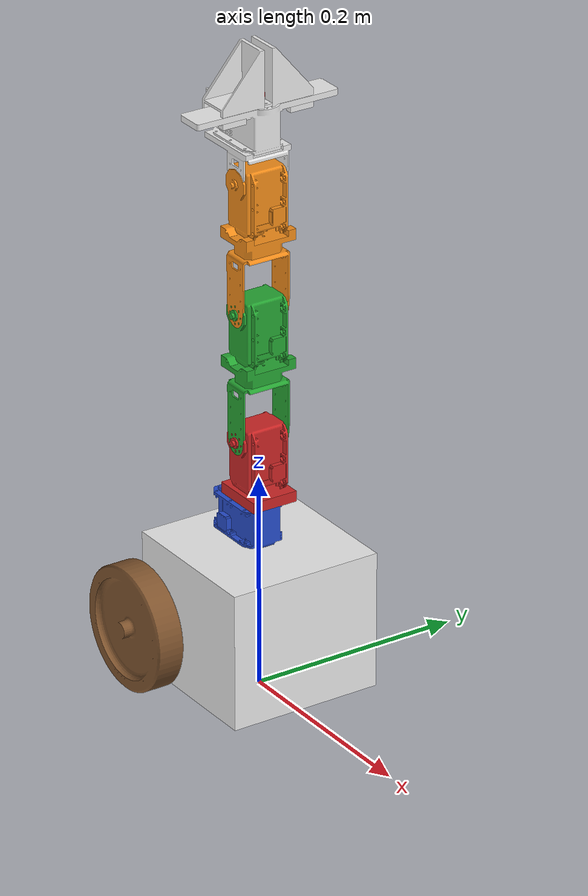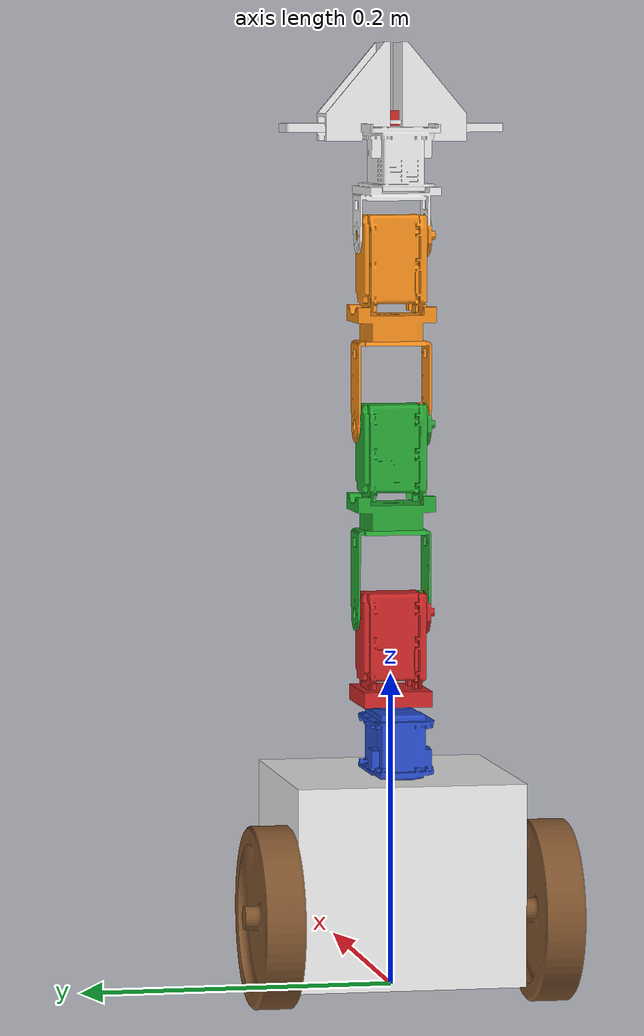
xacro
<?xml version="1.0"?>

<robot xmlns:xacro="http://www.ros.org/wiki/xacro" name="robot">

 <!-- include materials /-->
 <xacro:include filename="$(find robot_description)/model/materials.xacro" />

  <!-- World -->

  <!-- World fixed joint-->

  <link name="base_link">

    <inertial>
        <mass value="1.488"/>
        <origin xyz="0 0 0.068"  />
        <inertia ixx="0.0047" ixy="0.0" ixz="0.0047" iyy="0." iyz="0.0" izz="0.053"/>
    </inertial>

    <collision>
      <origin xyz="0 0 0.008" rpy="0 0 0"/>
      <geometry>
        <mesh filename="package://robot_description/new_meshes/base.stl" scale="0.001 0.001 0.001"/>
        <!--box size="0.146 0.146 0.129"/ -->
      </geometry>
    </collision>

    <visual>
      <origin xyz="0 0 0.008" rpy="0 0 0"/>
      <geometry>
        <mesh filename="package://robot_description/new_meshes/base.stl" scale="0.001 0.001 0.001"/>
        <!--box size="0.146 0.146 0.129"/ -->
      </geometry>
      <material name="white"/>
    </visual>

  </link>

    <!-- Joint wheel_left_joint -->
  <joint name="wheel_left_joint" type="continuous">
    <parent link="base_link"/>
    <child link="wheel_left_link"/>
    <origin xyz="-0.06 -0.073 0.055" rpy="0 0 0"/>
    <axis xyz="0 1 0"/>
  </joint>

  <!-- wheel_left_link -->
  <link name="wheel_left_link">
    <visual>
      <origin xyz="0 0 0" rpy="0 0 0"/>
      <geometry>
        <mesh filename="package://robot_description/new_meshes/wheel_left.stl" scale="0.01 0.01 0.01"/>
      </geometry>
      <material name="brown"/>
    </visual>

    <collision>
      <origin xyz="0 0 0" rpy="0 0 0"/>
      <geometry>
        <cylinder length="0.030" radius="0.050"/>
      </geometry>
    </collision>

    <inertial>
      <origin xyz="0 0 0" />
      <mass value="2.8498940e-02" />
      <inertia ixx="1.1175580e-05" ixy="-4.2369783e-11" ixz="-5.9381719e-09"
               iyy="1.1192413e-05" iyz="-1.4400107e-11"
               izz="2.0712558e-05" />
      </inertial>
  </link>

  <!-- Joint wheel_right_joint -->
  <joint name="wheel_right_joint" type="continuous">
    <parent link="base_link"/>
    <child link="wheel_right_link"/>
    <origin xyz="-0.06 0.073 0.055" rpy="0 0 0"/>
    <axis xyz="0 1 0"/>
  </joint>

  <!-- wheel_right_link -->
  <link name="wheel_right_link">
    <visual>
      <origin xyz="0 0 0" rpy="0 0 0"/>
      <geometry>
        <mesh filename="package://robot_description/new_meshes/wheel_right.stl" scale="0.01 0.01 0.01"/>
      </geometry>
      <material name="brown"/>
    </visual>

    <collision>
      <origin xyz="0 0 0" rpy="0 0 0"/>
      <geometry>
        <cylinder length="0.030" radius="0.050"/>
      </geometry>
    </collision>

    <inertial>
      <origin xyz="0 0 0" />
      <mass value="2.8498940e-02" />
      <inertia ixx="1.1175580e-05" ixy="-4.2369783e-11" ixz="-5.9381719e-09"
               iyy="1.1192413e-05" iyz="-1.4400107e-11"
               izz="2.0712558e-05" />
      </inertial>
  </link>

  <!-- Joint BaseToJoint1 -->
	<joint name="link1_fixed_joint" type="fixed">
		<parent link="base_link"/>
		<child link="link_1"/>
		<origin xyz="0 0 0.137" rpy="0 0 0"/>
	</joint>

	<!-- link_1 -->
  <link name="link_1">

     <inertial>
        <mass value="0.165"/>
        <origin xyz="0 0.024 0.0205"  />
        <inertia ixx="0.00007" ixy="0.0" ixz="0.0" iyy="0.00005" iyz="0.0" izz="0.0001"/>
    </inertial>

		<visual>
			<origin xyz="0 0 0.0" rpy="0 0 0"/>
			<geometry>
				<mesh filename="package://robot_description/new_meshes/mx-64tobase.stl" scale="0.01 0.01 0.01"/>
			</geometry>
			<material name="blue"/>
		</visual>

		<collision>
			<origin xyz="0 0 0.0" rpy="0 0 0"/>
			<geometry>
				<mesh filename="package://robot_description/new_meshes/mx-64tobase.stl" scale="0.01 0.01 0.01"/>
			</geometry>
		</collision>
	</link>

  <!-- joint1 -->
  <joint name="joint1" type="revolute">
    <parent link="link_1"/>
    <child link="link_2"/>
    <origin xyz="0 0.0 0.044" rpy="0 0 0"/>
    <axis xyz="0 0 1"/>
    <limit velocity="0.8" effort="1" lower="-3.14" upper="3.14" />
  </joint>

  <!-- link_2 -->
  <link name="link_2">

    <inertial>
        <mass value="0.165"/>
        <origin xyz="0 0.0 -0.0175"  />
        <inertia ixx="0.00007" ixy="0.0" ixz="0.0" iyy="0.0001" iyz="0.0" izz="0.00005"/>
    </inertial>

    <visual>
      <origin xyz="0 0 0.0" rpy="0 0 0"/>
      <geometry>
        <mesh filename="package://robot_description/new_meshes/mx-64second.stl" scale="0.01 0.01 0.01"/>
      </geometry>
      <material name="red"/>
    </visual>

    <collision>
      <origin xyz="0 0 0.0" rpy="0 0 0"/>
      <geometry>
        <mesh filename="package://robot_description/new_meshes/mx-64second.stl" scale="0.01 0.01 0.01"/>
      </geometry>
    </collision>
  </link>

  <!-- joint2 -->
  <joint name="joint2" type="revolute">
    <parent link="link_2"/>
    <child link="link_3"/>
    <origin xyz="0 0.0 0.058" rpy="0 0 0"/>
    <axis xyz="0 1 0"/>
    <limit velocity="4.8" effort="1" lower="-2.2" upper="2.2" />
  </joint>

  <!-- link_3 -->
  <link name="link_3">

    <inertial>
        <mass value="0.215"/>
        <origin xyz="0 0.0 0.100"  />
        <inertia ixx="0.00004" ixy="0.0" ixz="0.0" iyy="0.00004" iyz="0.0" izz="0.00007"/>
    </inertial>

    <visual>
      <origin xyz="0 0 0" rpy="0 0 0"/>
      <geometry>
        <mesh filename="package://robot_description/meshes/linked_mx_64t.stl" scale="0.01 0.01 0.01"/>
      </geometry>
      <material name="green"/>
    </visual>

    <collision>
      <origin xyz="0 0 0" rpy="0 0 0"/>
      <geometry>
        <mesh filename="package://robot_description/meshes/linked_mx_64t.stl" scale="0.01 0.01 0.01"/>
      </geometry>
    </collision>
  </link>

  <!-- joint3 -->
  <joint name="joint3" type="revolute">
    <parent link="link_3"/>
    <child link="link_4"/>
    <origin xyz="0 0.0 0.12" rpy="0 0 0"/>
    <axis xyz="0 1 0"/>
    <limit velocity="4.8" effort="1" lower="-2.1" upper="2.1" />
  </joint>

  <!-- link_4 -->
  <link name="link_4">

    <inertial>
        <mass value="0.215"/>
        <origin xyz="0 0.0 0.100"  />
        <inertia ixx="0.00004" ixy="0.0" ixz="0.0" iyy="0.00004" iyz="0.0" izz="0.00007"/>
    </inertial>

    <visual>
      <origin xyz="0 0 0" rpy="0 0 0"/>
      <geometry>
        <mesh filename="package://robot_description/meshes/linked_mx_64t.stl" scale="0.01 0.01 0.01"/>
      </geometry>
      <material name="orange"/>
    </visual>

    <collision>
      <origin xyz="0 0 0" rpy="0 0 0"/>
      <geometry>
        <mesh filename="package://robot_description/meshes/linked_mx_64t.stl" scale="0.01 0.01 0.01"/>
      </geometry>
    </collision>
  </link>

  <!-- joint4 -->
  <joint name="joint4" type="revolute">
    <parent link="link_4"/>
    <child link="link_5"/>
    <origin xyz="0 0 0.12" rpy="0 0 0"/>
    <axis xyz="0 1 0"/>
    <limit effort="4.8" lower="-2.1" upper="2.1" velocity="10"/>
  </joint>

  <!-- link5 -->
  <link name="link_5">
    <collision>
      <origin xyz="0 0 0.0" rpy="0 0 0"/>
      <geometry>
        <mesh filename="package://robot_description/new_meshes/mx-64togripper2.stl" scale="0.001 0.001 0.001"/>
      </geometry>
    </collision>

    <visual>
      <origin xyz="0 0 0.0" rpy="0 0 0"/>
      <geometry>
        <mesh filename="package://robot_description/new_meshes/mx-64togripper2.stl" scale="0.001 0.001 0.001"/>
      </geometry>
      <material name="white"/>
    </visual>

    <inertial>
      <origin xyz="0 0 0.0" rpy="0 0 0"/>
      <mass value="0.050"/>
      <inertia ixx="1.0" ixy="0.0" ixz="0.0" iyy="1.0" iyz="0.0" izz="1.0"/>
    </inertial>
  </link>

  <!-- joint5 -->
  <joint name="joint5" type="prismatic">
    <parent link="link_5"/>
    <child link="link_gripper_left"/>
    <origin xyz="0 -0.0245 0.069" rpy="0 0 0"/>
    <axis xyz="0 1 0"/>
    <limit velocity="4.8" effort="1" lower="0.0" upper="-0.021" />
  </joint>

  <!-- GripperLeft -->
  <link name="link_gripper_left">
    <collision>
      <origin xyz="0 0 0.0" rpy="0 0 0"/>
      <geometry>
        <mesh filename="package://robot_description/new_meshes/gripper_l.stl" scale="0.001 0.001 0.001"/>
      </geometry>
    </collision>

    <visual>
      <origin xyz="0 0 0.0" rpy="0 0 0"/>
      <geometry>
         <mesh filename="package://robot_description/new_meshes/gripper_l.stl" scale="0.001 0.001 0.001"/>
      </geometry>
      <material name="white"/>
    </visual>

    <inertial>
      <origin xyz="0 0 0.0" rpy="0 0 0"/>
      <mass value="0.050"/>
      <inertia ixx="1.0" ixy="0.0" ixz="0.0" iyy="1.0" iyz="0.0" izz="1.0"/>
    </inertial>
  </link>

  <!-- joint5_mimic -->
  <joint name="joint5_mimic" type="prismatic">
    <parent link="link_5"/>
    <child link="link_gripper_right"/>
    <origin xyz="0 0.0245 0.069" rpy="0 0 0"/>
    <axis xyz="0 1 0"/>
    <limit velocity="4.8" effort="1" lower="0.0" upper="0.021" />
    <mimic joint="joint5" multiplier="-1" />
  </joint>

  <!-- GripperRight -->
  <link name="link_gripper_right">
    <collision>
      <origin xyz="0 0 0.0" rpy="0 0 0"/>
      <geometry>
        <mesh filename="package://robot_description/new_meshes/gripper_r.stl" scale="0.001 0.001 0.001"/>
      </geometry>
    </collision>

    <visual>
      <origin xyz="0 0 0.0" rpy="0 0 0"/>
      <geometry>
         <mesh filename="package://robot_description/new_meshes/gripper_r.stl" scale="0.001 0.001 0.001"/>
      </geometry>
      <material name="white"/>
    </visual>

    <inertial>
      <origin xyz="0 0 0.0" rpy="0 0 0"/>
      <mass value="0.050"/>
      <inertia ixx="1.0" ixy="0.0" ixz="0.0" iyy="1.0" iyz="0.0" izz="1.0"/>
    </inertial>
  </link>

  <!-- end effector joint -->
  <joint name="end_effector_joint" type="fixed">
    <origin xyz="0 0.0 0.074" rpy="0 0 0"/>
    <parent link="link_5"/>
    <child link="end_effector_link"/>
  </joint>

  <!-- end effector link -->
  <link name="end_effector_link">
    <visual>
      <origin xyz="0 0 0" rpy="0 0 0"/>
      <geometry>
        <box size="0.01 0.01 0.01" />
      </geometry>
      <material name="red"/>
     </visual>

    <inertial>
      <origin xyz="0.0 0.0 0.0" rpy="0 0 0"/>
      <mass value="0.001"/>
      <inertia ixx="1.0e-06" ixy="0.0" ixz="0.0" iyy="1.0e-06" iyz="0.0" izz="1.0e-06" />
    </inertial>
  </link>

   </robot>
